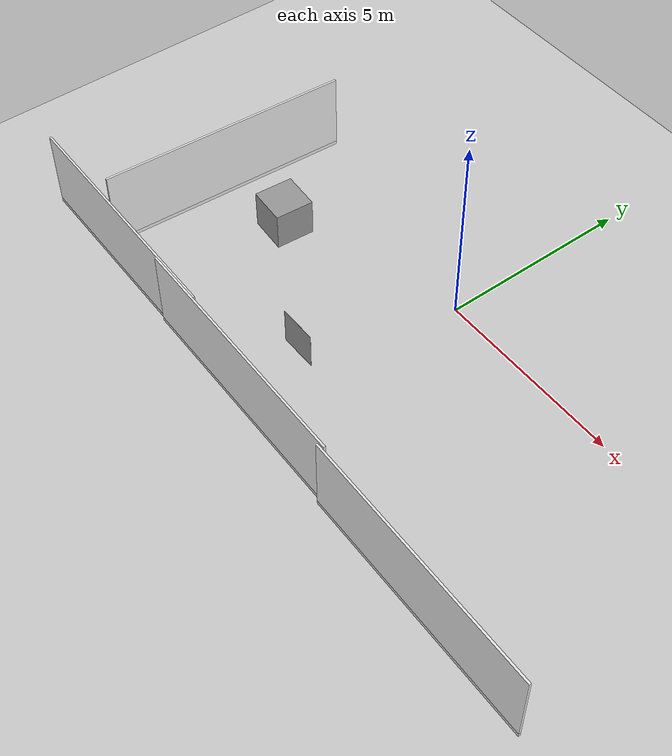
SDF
<sdf version="1.7">
 <world name="default">
  <model name="ground_plane">
   <static>1</static>
   <link name="link">
    <collision name="collision">
     <geometry><plane><normal>0 0 1</normal><size>100 100</size></plane></geometry>
     <surface><friction><ode><mu>100</mu><mu2>50</mu2></ode></friction></surface>
    </collision>
    <visual name="visual">
     <cast_shadows>0</cast_shadows>
     <geometry><plane><normal>0 0 1</normal><size>100 100</size></plane></geometry>
     <material>
      <script><uri>file://media/materials/scripts/gazebo.material</uri><name>Gazebo/Grey</name></script>
     </material>
    </visual>
   </link>
  </model>
  <model name="unit_box_clone_1">
   <pose>-1.17769 -3.71836 0.5 -4e-06 -0 5e-06</pose>
   <link name="link">
    <inertial>
     <mass>1</mass>
     <inertia>
      <ixx>0.166667</ixx>
      <ixy>0</ixy>
      <ixz>0</ixz>
      <iyy>0.166667</iyy>
      <iyz>0</iyz>
      <izz>0.166667</izz>
     </inertia>
    </inertial>
    <collision name="collision"><geometry><box><size>1 0.00159558 1</size></box></geometry></collision>
    <visual name="visual">
     <geometry><box><size>1 0.00159558 1</size></box></geometry>
     <material>
      <script><name>Gazebo/Grey</name><uri>file://media/materials/scripts/gazebo.material</uri></script>
     </material>
    </visual>
   </link>
  </model>
  <model name="unit_box_0">
   <pose>-4.66361 -1.5958 0.5 0 0 -0.068173</pose>
   <link name="link">
    <inertial>
     <mass>1</mass>
     <inertia>
      <ixx>0.166667</ixx>
      <ixy>0</ixy>
      <ixz>0</ixz>
      <iyy>0.166667</iyy>
      <iyz>0</iyz>
      <izz>0.166667</izz>
     </inertia>
    </inertial>
    <collision name="collision"><geometry><box><size>1 1 1</size></box></geometry></collision>
    <visual name="visual">
     <geometry><box><size>1 1 1</size></box></geometry>
     <material>
      <script><name>Gazebo/Grey</name><uri>file://media/materials/scripts/gazebo.material</uri></script>
     </material>
    </visual>
   </link>
  </model>
  <model name="unit_box_2">
   <pose>-0.068794 -10.6758 0.000268 1.4e-05 3e-06 0.91865</pose>
   <link name="link">
    <inertial>
     <mass>1</mass>
     <inertia>
      <ixx>0.166667</ixx>
      <ixy>0</ixy>
      <ixz>0</ixz>
      <iyy>0.166667</iyy>
      <iyz>0</iyz>
      <izz>0.166667</izz>
     </inertia>
    </inertial>
    <collision name="collision">
     <geometry><box><size>0.000679255 0.00248235 0.000536821</size></box></geometry>
    </collision>
    <visual name="visual">
     <geometry><box><size>0.000679255 0.00248235 0.000536821</size></box></geometry>
     <material>
      <script><name>Gazebo/Grey</name><uri>file://media/materials/scripts/gazebo.material</uri></script>
     </material>
    </visual>
   </link>
  </model>
  <model name="full_wall_55_6475_2090_clone_clone_0_clone">
   <link name="link">
    <inertial>
     <mass>50</mass>
     <inertia><ixx>1</ixx><ixy>0</ixy><ixz>0</ixz><iyy>1</iyy><iyz>0</iyz><izz>1</izz></inertia>
    </inertial>
    <visual name="bottom_frame">
     <pose>0 0 0.05 0 -0 0</pose>
     <geometry><box><size>0.055 6.475 0.1</size></box></geometry>
     <material>
      <script><uri>model://base_materials/color/scripts</uri><name>hsr_color/white</name></script>
     </material>
    </visual>
    <collision name="collision_bottom_frame">
     <pose>0 0 0.05 0 -0 0</pose>
     <geometry><box><size>0.055 6.475 0.1</size></box></geometry>
    </collision>
    <visual name="wall">
     <pose>0 0 1.095 0 -0 0</pose>
     <geometry><box><size>0.055 6.475 1.99</size></box></geometry>
     <material>
      <script>
       <uri>model://base_materials/wall/scripts</uri>
       <uri>model://base_materials/wall/textures</uri>
       <name>wall/white_noise</name>
      </script>
     </material>
    </visual>
    <collision name="collision_wall">
     <pose>0 0 1.095 0 -0 0</pose>
     <geometry><box><size>0.055 6.475 1.99</size></box></geometry>
    </collision>
    <velocity_decay><linear>0</linear><angular>0</angular></velocity_decay>
   </link>
   <static>1</static>
   <pose>5.65079 -5.86656 0 0 -0 1.55299</pose>
  </model>
  <model name="full_wall_55_6475_2090_clone_clone_0_clone_0_clone_0">
   <link name="link">
    <inertial>
     <mass>50</mass>
     <inertia><ixx>1</ixx><ixy>0</ixy><ixz>0</ixz><iyy>1</iyy><iyz>0</iyz><izz>1</izz></inertia>
    </inertial>
    <visual name="bottom_frame">
     <pose>0 0 0.05 0 -0 0</pose>
     <geometry><box><size>0.055 6.475 0.1</size></box></geometry>
     <material>
      <script><uri>model://base_materials/color/scripts</uri><name>hsr_color/white</name></script>
     </material>
    </visual>
    <collision name="collision_bottom_frame">
     <pose>0 0 0.05 0 -0 0</pose>
     <geometry><box><size>0.055 6.475 0.1</size></box></geometry>
    </collision>
    <visual name="wall">
     <pose>0 0 1.095 0 -0 0</pose>
     <geometry><box><size>0.055 6.475 1.99</size></box></geometry>
     <material>
      <script>
       <uri>model://base_materials/wall/scripts</uri>
       <uri>model://base_materials/wall/textures</uri>
       <name>wall/white_noise</name>
      </script>
     </material>
    </visual>
    <collision name="collision_wall">
     <pose>0 0 1.095 0 -0 0</pose>
     <geometry><box><size>0.055 6.475 1.99</size></box></geometry>
    </collision>
    <velocity_decay><linear>0</linear><angular>0</angular></velocity_decay>
   </link>
   <static>1</static>
   <pose>-6.58032 -1.94621 0 0 -0 3.08646</pose>
  </model>
  <model name="full_wall_55_6475_2090_clone_clone_0_clone_1">
   <link name="link">
    <inertial>
     <mass>50</mass>
     <inertia><ixx>1</ixx><ixy>0</ixy><ixz>0</ixz><iyy>1</iyy><iyz>0</iyz><izz>1</izz></inertia>
    </inertial>
    <visual name="bottom_frame">
     <pose>0 0 0.05 0 -0 0</pose>
     <geometry><box><size>0.055 6.475 0.1</size></box></geometry>
     <material>
      <script><uri>model://base_materials/color/scripts</uri><name>hsr_color/white</name></script>
     </material>
    </visual>
    <collision name="collision_bottom_frame">
     <pose>0 0 0.05 0 -0 0</pose>
     <geometry><box><size>0.055 6.475 0.1</size></box></geometry>
    </collision>
    <visual name="wall">
     <pose>0 0 1.095 0 -0 0</pose>
     <geometry><box><size>0.055 6.475 1.99</size></box></geometry>
     <material>
      <script>
       <uri>model://base_materials/wall/scripts</uri>
       <uri>model://base_materials/wall/textures</uri>
       <name>wall/white_noise</name>
      </script>
     </material>
    </visual>
    <collision name="collision_wall">
     <pose>0 0 1.095 0 -0 0</pose>
     <geometry><box><size>0.055 6.475 1.99</size></box></geometry>
    </collision>
    <velocity_decay><linear>0</linear><angular>0</angular></velocity_decay>
   </link>
   <static>1</static>
   <pose>-0.663534 -5.66991 0 0 -0 1.55299</pose>
  </model>
  <model name="full_wall_55_6475_2090_clone_clone_0_clone_2">
   <link name="link">
    <inertial>
     <mass>50</mass>
     <inertia><ixx>1</ixx><ixy>0</ixy><ixz>0</ixz><iyy>1</iyy><iyz>0</iyz><izz>1</izz></inertia>
    </inertial>
    <visual name="bottom_frame">
     <pose>0 0 0.05 0 -0 0</pose>
     <geometry><box><size>0.055 6.475 0.1</size></box></geometry>
     <material>
      <script><uri>model://base_materials/color/scripts</uri><name>hsr_color/white</name></script>
     </material>
    </visual>
    <collision name="collision_bottom_frame">
     <pose>0 0 0.05 0 -0 0</pose>
     <geometry><box><size>0.055 6.475 0.1</size></box></geometry>
    </collision>
    <visual name="wall">
     <pose>0 0 1.095 0 -0 0</pose>
     <geometry><box><size>0.055 6.475 1.99</size></box></geometry>
     <material>
      <script>
       <uri>model://base_materials/wall/scripts</uri>
       <uri>model://base_materials/wall/textures</uri>
       <name>wall/white_noise</name>
      </script>
     </material>
    </visual>
    <collision name="collision_wall">
     <pose>0 0 1.095 0 -0 0</pose>
     <geometry><box><size>0.055 6.475 1.99</size></box></geometry>
    </collision>
    <velocity_decay><linear>0</linear><angular>0</angular></velocity_decay>
   </link>
   <static>1</static>
   <pose>-5.6148 -5.53573 0 0 -0 1.55299</pose>
  </model>
 </world>
</sdf>
